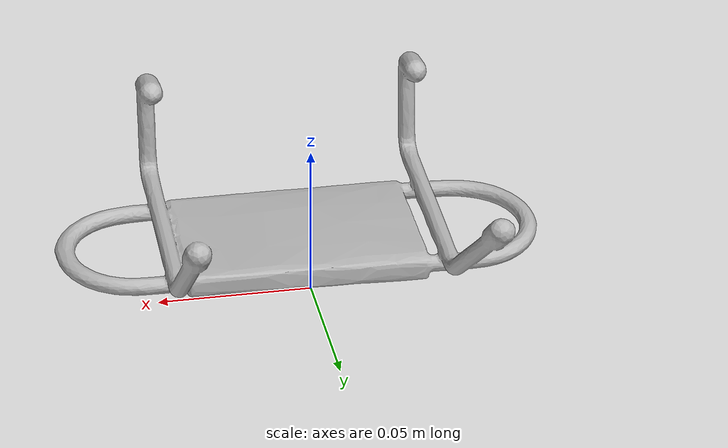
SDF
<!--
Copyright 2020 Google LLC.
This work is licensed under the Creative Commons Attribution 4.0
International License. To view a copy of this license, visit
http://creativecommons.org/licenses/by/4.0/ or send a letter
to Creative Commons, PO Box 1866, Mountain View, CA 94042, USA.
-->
<?xml version="1.0" ?>
<sdf version="1.6">
  <model name="Spectrum_Wall_Mount">
    <link name="link_0">
      <visual name="visual">
        <geometry>
          <mesh>
            <uri>meshes/model.obj</uri>
          </mesh>
        </geometry>
      </visual>
      <collision name="collision_0">
        <geometry>
          <mesh>
            <uri>meshes/model.obj</uri>
          </mesh>
        </geometry>
      </collision>
    </link>
  </model>
</sdf>
